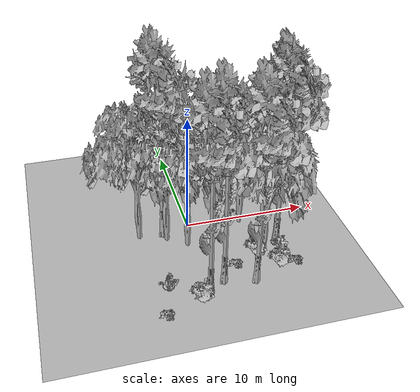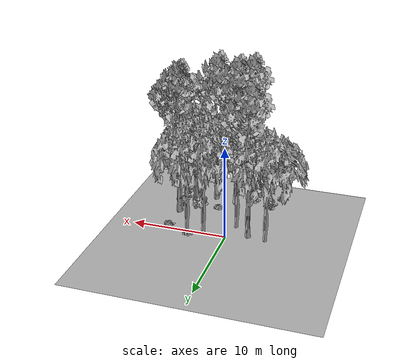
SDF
<sdf version="1.7">
 <world name="default">
  <model name="ground_plane">
   <static>1</static>
   <link name="link">
    <collision name="collision">
     <pose>-50 0 0 0 -0 0</pose>
     <geometry><plane><normal>0 0 1</normal><size>80 80</size></plane></geometry>
     <surface><contact><ode><min_depth>0.01</min_depth><max_vel>0</max_vel></ode></contact></surface>
    </collision>
    <visual name="grass">
     <cast_shadows>0</cast_shadows>
     <geometry>
      <mesh>
       <scale>0.46714285714285714 0.46714285714285714 0.1</scale>
       <uri>file://grass_plane/meshes/grass_plane.dae</uri>
      </mesh>
     </geometry>
    </visual>
   </link>
  </model>
  <model name="Tree 60">
   <static>1</static>
   <pose>2.364135696623741 -0.3086725488754709 0 1.57079 -0 0</pose>
   <link name="link">
    <collision name="collision">
     <geometry><mesh><scale>3.5 5 3.5</scale><uri>model://tree_2/meshes/tree_2.obj</uri></mesh></geometry>
    </collision>
    <visual name="visual">
     <geometry><mesh><scale>3.5 5 3.5</scale><uri>model://tree_2/meshes/tree_2.obj</uri></mesh></geometry>
    </visual>
   </link>
  </model>
  <model name="Tree 83">
   <static>1</static>
   <pose>-0.6313029251939568 -2.287053834019744 0 1.57079 -0 0</pose>
   <link name="link">
    <collision name="collision">
     <geometry><mesh><scale>3.5 5 3.5</scale><uri>model://tree_2/meshes/tree_2.obj</uri></mesh></geometry>
    </collision>
    <visual name="visual">
     <geometry><mesh><scale>3.5 5 3.5</scale><uri>model://tree_2/meshes/tree_2.obj</uri></mesh></geometry>
    </visual>
   </link>
  </model>
  <model name="Tree 153">
   <static>1</static>
   <pose>0.9997146944253075 -7.020975743781229 0 1.57079 -0 0</pose>
   <link name="link">
    <collision name="collision">
     <geometry><mesh><scale>3.5 5 3.5</scale><uri>model://tree_9/meshes/tree_9.obj</uri></mesh></geometry>
    </collision>
    <visual name="visual">
     <geometry><mesh><scale>3.5 5 3.5</scale><uri>model://tree_9/meshes/tree_9.obj</uri></mesh></geometry>
    </visual>
   </link>
  </model>
  <model name="Tree 192">
   <static>1</static>
   <pose>4.21699955934789 -0.5054377156594114 0 1.57079 -0 0</pose>
   <link name="link">
    <collision name="collision">
     <geometry><mesh><scale>3.5 5 3.5</scale><uri>model://tree_2/meshes/tree_2.obj</uri></mesh></geometry>
    </collision>
    <visual name="visual">
     <geometry><mesh><scale>3.5 5 3.5</scale><uri>model://tree_2/meshes/tree_2.obj</uri></mesh></geometry>
    </visual>
   </link>
  </model>
  <model name="Tree 212">
   <static>1</static>
   <pose>-2.0796180221971454 -1.2745935288073085 0 1.57079 -0 0</pose>
   <link name="link">
    <collision name="collision">
     <geometry><mesh><scale>3.5 5 3.5</scale><uri>model://tree_2/meshes/tree_2.obj</uri></mesh></geometry>
    </collision>
    <visual name="visual">
     <geometry><mesh><scale>3.5 5 3.5</scale><uri>model://tree_2/meshes/tree_2.obj</uri></mesh></geometry>
    </visual>
   </link>
  </model>
  <model name="Tree 223">
   <static>1</static>
   <pose>6.262772974279514 -3.864514451831134 0 1.57079 -0 0</pose>
   <link name="link">
    <collision name="collision">
     <geometry><mesh><scale>3.5 5 3.5</scale><uri>model://tree_9/meshes/tree_9.obj</uri></mesh></geometry>
    </collision>
    <visual name="visual">
     <geometry><mesh><scale>3.5 5 3.5</scale><uri>model://tree_9/meshes/tree_9.obj</uri></mesh></geometry>
    </visual>
   </link>
  </model>
  <model name="Tree 268">
   <static>1</static>
   <pose>6.326702387016418 -3.5924628491002153 0 1.57079 -0 0</pose>
   <link name="link">
    <collision name="collision">
     <geometry><mesh><scale>3.5 5 3.5</scale><uri>model://tree_9/meshes/tree_9.obj</uri></mesh></geometry>
    </collision>
    <visual name="visual">
     <geometry><mesh><scale>3.5 5 3.5</scale><uri>model://tree_9/meshes/tree_9.obj</uri></mesh></geometry>
    </visual>
   </link>
  </model>
  <model name="Tree 443">
   <static>1</static>
   <pose>-2.208213976577561 -0.7124526139089937 0 1.57079 -0 0</pose>
   <link name="link">
    <collision name="collision">
     <geometry><mesh><scale>3.5 5 3.5</scale><uri>model://tree_9/meshes/tree_9.obj</uri></mesh></geometry>
    </collision>
    <visual name="visual">
     <geometry><mesh><scale>3.5 5 3.5</scale><uri>model://tree_9/meshes/tree_9.obj</uri></mesh></geometry>
    </visual>
   </link>
  </model>
  <model name="Tree 462">
   <static>1</static>
   <pose>3.3452225919211074 -7.535803596809956 0 1.57079 -0 0</pose>
   <link name="link">
    <collision name="collision">
     <geometry><mesh><scale>3.5 5 3.5</scale><uri>model://tree_9/meshes/tree_9.obj</uri></mesh></geometry>
    </collision>
    <visual name="visual">
     <geometry><mesh><scale>3.5 5 3.5</scale><uri>model://tree_9/meshes/tree_9.obj</uri></mesh></geometry>
    </visual>
   </link>
  </model>
  <model name="Tree 509">
   <static>1</static>
   <pose>-0.3122183101426259 -7.9518750494905674 0 1.57079 -0 0</pose>
   <link name="link">
    <collision name="collision">
     <geometry><mesh><scale>3.5 5 3.5</scale><uri>model://tree_9/meshes/tree_9.obj</uri></mesh></geometry>
    </collision>
    <visual name="visual">
     <geometry><mesh><scale>3.5 5 3.5</scale><uri>model://tree_9/meshes/tree_9.obj</uri></mesh></geometry>
    </visual>
   </link>
  </model>
  <model name="Tree 568">
   <static>1</static>
   <pose>4.752590829209929 -4.824219597386218 0 1.57079 -0 0</pose>
   <link name="link">
    <collision name="collision">
     <geometry><mesh><scale>3.5 5 3.5</scale><uri>model://tree_2/meshes/tree_2.obj</uri></mesh></geometry>
    </collision>
    <visual name="visual">
     <geometry><mesh><scale>3.5 5 3.5</scale><uri>model://tree_2/meshes/tree_2.obj</uri></mesh></geometry>
    </visual>
   </link>
  </model>
  <model name="Tree 603">
   <static>1</static>
   <pose>-4.169141820739775 -0.5095189964417912 0 1.57079 -0 0</pose>
   <link name="link">
    <collision name="collision">
     <geometry><mesh><scale>3.5 5 3.5</scale><uri>model://tree_2/meshes/tree_2.obj</uri></mesh></geometry>
    </collision>
    <visual name="visual">
     <geometry><mesh><scale>3.5 5 3.5</scale><uri>model://tree_2/meshes/tree_2.obj</uri></mesh></geometry>
    </visual>
   </link>
  </model>
  <model name="Bush 26">
   <static>1</static>
   <pose>4.276850048915264 -4.894172185945209 0 1.57079 -0 0</pose>
   <link name="link">
    <collision name="collision">
     <geometry><mesh><scale>2 2 2</scale><uri>model://bush_1/meshes/bush_1.obj</uri></mesh></geometry>
     <surface><contact><collide_without_contact>false</collide_without_contact></contact></surface>
    </collision>
    <visual name="visual">
     <geometry><mesh><scale>2 2 2</scale><uri>model://bush_1/meshes/bush_1.obj</uri></mesh></geometry>
    </visual>
   </link>
  </model>
  <model name="Bush 129">
   <static>1</static>
   <pose>7.040460703988643 -6.234655251901316 0 1.57079 -0 0</pose>
   <link name="link">
    <collision name="collision">
     <geometry><mesh><scale>2 2 2</scale><uri>model://bush_2/meshes/bush_2.obj</uri></mesh></geometry>
     <surface><contact><collide_without_contact>false</collide_without_contact></contact></surface>
    </collision>
    <visual name="visual">
     <geometry><mesh><scale>2 2 2</scale><uri>model://bush_2/meshes/bush_2.obj</uri></mesh></geometry>
    </visual>
   </link>
  </model>
  <model name="Bush 249">
   <static>1</static>
   <pose>-3.1003781565586266 -6.867511517024958 0 1.57079 -0 0</pose>
   <link name="link">
    <collision name="collision">
     <geometry><mesh><scale>2 2 2</scale><uri>model://bush_4/meshes/bush_4.obj</uri></mesh></geometry>
     <surface><contact><collide_without_contact>false</collide_without_contact></contact></surface>
    </collision>
    <visual name="visual">
     <geometry><mesh><scale>2 2 2</scale><uri>model://bush_4/meshes/bush_4.obj</uri></mesh></geometry>
    </visual>
   </link>
  </model>
  <model name="Bush 270">
   <static>1</static>
   <pose>3.8577522709676586 0.5040802965119511 0 1.57079 -0 0</pose>
   <link name="link">
    <collision name="collision">
     <geometry><mesh><scale>2 2 2</scale><uri>model://bush_2/meshes/bush_2.obj</uri></mesh></geometry>
     <surface><contact><collide_without_contact>false</collide_without_contact></contact></surface>
    </collision>
    <visual name="visual">
     <geometry><mesh><scale>2 2 2</scale><uri>model://bush_2/meshes/bush_2.obj</uri></mesh></geometry>
    </visual>
   </link>
  </model>
  <model name="Bush 338">
   <static>1</static>
   <pose>5.624181012071716 -6.5483959550336195 0 1.57079 -0 0</pose>
   <link name="link">
    <collision name="collision">
     <geometry><mesh><scale>2 2 2</scale><uri>model://bush_1/meshes/bush_1.obj</uri></mesh></geometry>
     <surface><contact><collide_without_contact>false</collide_without_contact></contact></surface>
    </collision>
    <visual name="visual">
     <geometry><mesh><scale>2 2 2</scale><uri>model://bush_1/meshes/bush_1.obj</uri></mesh></geometry>
    </visual>
   </link>
  </model>
  <model name="Bush 457">
   <static>1</static>
   <pose>-3.8038286432446142 -9.267437905184597 0 1.57079 -0 0</pose>
   <link name="link">
    <collision name="collision">
     <geometry><mesh><scale>2 2 2</scale><uri>model://bush_2/meshes/bush_2.obj</uri></mesh></geometry>
     <surface><contact><collide_without_contact>false</collide_without_contact></contact></surface>
    </collision>
    <visual name="visual">
     <geometry><mesh><scale>2 2 2</scale><uri>model://bush_2/meshes/bush_2.obj</uri></mesh></geometry>
    </visual>
   </link>
  </model>
  <model name="Bush 508">
   <static>1</static>
   <pose>-0.9272225803045728 -8.125585757745188 0 1.57079 -0 0</pose>
   <link name="link">
    <collision name="collision">
     <geometry><mesh><scale>2 2 2</scale><uri>model://bush_2/meshes/bush_2.obj</uri></mesh></geometry>
     <surface><contact><collide_without_contact>false</collide_without_contact></contact></surface>
    </collision>
    <visual name="visual">
     <geometry><mesh><scale>2 2 2</scale><uri>model://bush_2/meshes/bush_2.obj</uri></mesh></geometry>
    </visual>
   </link>
  </model>
  <model name="Bush 589">
   <static>1</static>
   <pose>-1.0195608093186976 -8.596318176917066 0 1.57079 -0 0</pose>
   <link name="link">
    <collision name="collision">
     <geometry><mesh><scale>2 2 2</scale><uri>model://bush_1/meshes/bush_1.obj</uri></mesh></geometry>
     <surface><contact><collide_without_contact>false</collide_without_contact></contact></surface>
    </collision>
    <visual name="visual">
     <geometry><mesh><scale>2 2 2</scale><uri>model://bush_1/meshes/bush_1.obj</uri></mesh></geometry>
    </visual>
   </link>
  </model>
  <model name="Bush 600">
   <static>1</static>
   <pose>2.4259353711015024 -5.497564341579427 0 1.57079 -0 0</pose>
   <link name="link">
    <collision name="collision">
     <geometry><mesh><scale>2 2 2</scale><uri>model://bush_2/meshes/bush_2.obj</uri></mesh></geometry>
     <surface><contact><collide_without_contact>false</collide_without_contact></contact></surface>
    </collision>
    <visual name="visual">
     <geometry><mesh><scale>2 2 2</scale><uri>model://bush_2/meshes/bush_2.obj</uri></mesh></geometry>
    </visual>
   </link>
  </model>
  <model name="Bush 614">
   <static>1</static>
   <pose>6.26409374920069 -4.7223615513745045 0 1.57079 -0 0</pose>
   <link name="link">
    <collision name="collision">
     <geometry><mesh><scale>2 2 2</scale><uri>model://bush_0/meshes/bush_0.obj</uri></mesh></geometry>
     <surface><contact><collide_without_contact>false</collide_without_contact></contact></surface>
    </collision>
    <visual name="visual">
     <geometry><mesh><scale>2 2 2</scale><uri>model://bush_0/meshes/bush_0.obj</uri></mesh></geometry>
    </visual>
   </link>
  </model>
  <model name="Bush 630">
   <static>1</static>
   <pose>6.3676799391833185 -0.6620532857892982 0 1.57079 -0 0</pose>
   <link name="link">
    <collision name="collision">
     <geometry><mesh><scale>2 2 2</scale><uri>model://bush_2/meshes/bush_2.obj</uri></mesh></geometry>
     <surface><contact><collide_without_contact>false</collide_without_contact></contact></surface>
    </collision>
    <visual name="visual">
     <geometry><mesh><scale>2 2 2</scale><uri>model://bush_2/meshes/bush_2.obj</uri></mesh></geometry>
    </visual>
   </link>
  </model>
 </world>
</sdf>
